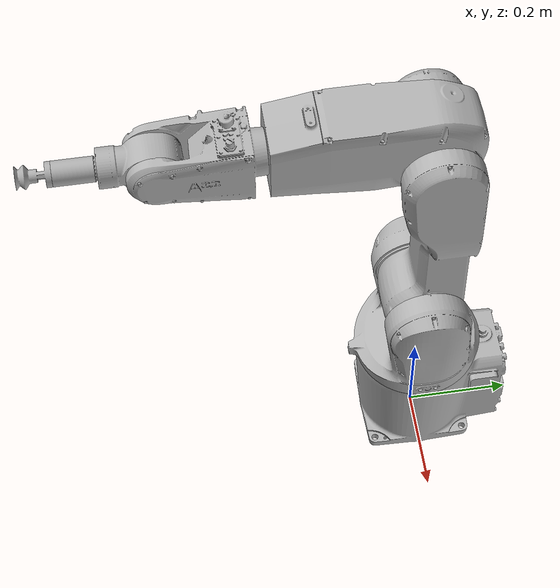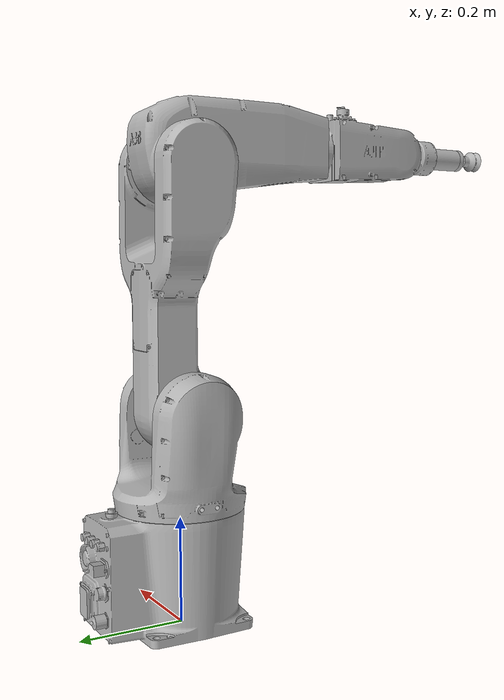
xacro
<?xml version="1.0" ?>
<robot name="irb1200" xmlns:xacro="http://www.ros.org/wiki/xacro">

<xacro:include filename="$(find irb1200)/urdf/materials.xacro" />
<xacro:include filename="$(find irb1200)/urdf/irb1200.trans" />
<xacro:include filename="$(find irb1200)/urdf/irb1200.gazebo" />
<link name="base_link">
  <inertial>
    <origin xyz="0.0004759674741186417 0.02363485068790292 0.11219148932498035" rpy="0 0 0"/>
    <mass value="83.56071102944446"/>
    <inertia ixx="0.781146" iyy="0.579256" izz="0.698148" ixy="-0.004319" iyz="0.00506" ixz="-0.001279"/>
  </inertial>
  <visual>
    <origin xyz="0 0 0" rpy="0 0 0"/>
    <geometry>
      <mesh filename="package://irb1200/meshes/base_link.stl" scale="0.001 0.001 0.001"/>
    </geometry>
    <material name="silver"/>
  </visual>
  <collision>
    <origin xyz="0 0 0" rpy="0 0 0"/>
    <geometry>
      <mesh filename="package://irb1200/meshes/base_link.stl" scale="0.001 0.001 0.001"/>
    </geometry>
  </collision>
</link>

<link name="Link1_rev0_1">
  <inertial>
    <origin xyz="0.0004383806530665506 0.00326493021677348 0.10230298786125677" rpy="0 0 0"/>
    <mass value="47.61495963534385"/>
    <inertia ixx="0.37735" iyy="0.595233" izz="0.433856" ixy="0.000186" iyz="0.004407" ixz="0.000755"/>
  </inertial>
  <visual>
    <origin xyz="0.0 -0.0 -0.219" rpy="0 0 0"/>
    <geometry>
      <mesh filename="package://irb1200/meshes/Link1_rev0_1.stl" scale="0.001 0.001 0.001"/>
    </geometry>
    <material name="silver"/>
  </visual>
  <collision>
    <origin xyz="0.0 -0.0 -0.219" rpy="0 0 0"/>
    <geometry>
      <mesh filename="package://irb1200/meshes/Link1_rev0_1.stl" scale="0.001 0.001 0.001"/>
    </geometry>
  </collision>
</link>

<link name="Link2_rev0_1">
  <inertial>
    <origin xyz="0.05704146777769828 0.012331972875891169 0.21847788526315937" rpy="0 0 0"/>
    <mass value="62.59364394380273"/>
    <inertia ixx="1.921119" iyy="2.095675" izz="0.339093" ixy="-0.000462" iyz="0.008496" ixz="0.002671"/>
  </inertial>
  <visual>
    <origin xyz="0.0615 -0.0 -0.3991" rpy="0 0 0"/>
    <geometry>
      <mesh filename="package://irb1200/meshes/Link2_rev0_1.stl" scale="0.001 0.001 0.001"/>
    </geometry>
    <material name="silver"/>
  </visual>
  <collision>
    <origin xyz="0.0615 -0.0 -0.3991" rpy="0 0 0"/>
    <geometry>
      <mesh filename="package://irb1200/meshes/Link2_rev0_1.stl" scale="0.001 0.001 0.001"/>
    </geometry>
  </collision>
</link>

<link name="Link3_rev0_1">
  <inertial>
    <origin xyz="-0.06379555030759612 -0.09811898038030374 0.03502911684883658" rpy="0 0 0"/>
    <mass value="50.25181750727747"/>
    <inertia ixx="0.614584" iyy="0.159822" izz="0.56594" ixy="-0.000967" iyz="0.040908" ixz="0.000343"/>
  </inertial>
  <visual>
    <origin xyz="-0.0607 -0.0 -0.8471" rpy="0 0 0"/>
    <geometry>
      <mesh filename="package://irb1200/meshes/Link3_rev0_1.stl" scale="0.001 0.001 0.001"/>
    </geometry>
    <material name="silver"/>
  </visual>
  <collision>
    <origin xyz="-0.0607 -0.0 -0.8471" rpy="0 0 0"/>
    <geometry>
      <mesh filename="package://irb1200/meshes/Link3_rev0_1.stl" scale="0.001 0.001 0.001"/>
    </geometry>
  </collision>
</link>

<link name="Link4_rev0_1">
  <inertial>
    <origin xyz="0.001625537251923985 -0.0937540320207727 0.001095972007822188" rpy="0 0 0"/>
    <mass value="14.103815294617599"/>
    <inertia ixx="0.057707" iyy="0.029402" izz="0.061948" ixy="0.001376" iyz="-0.000481" ixz="-1e-05"/>
  </inertial>
  <visual>
    <origin xyz="0.0033 0.2885 -0.888589" rpy="0 0 0"/>
    <geometry>
      <mesh filename="package://irb1200/meshes/Link4_rev0_1.stl" scale="0.001 0.001 0.001"/>
    </geometry>
    <material name="silver"/>
  </visual>
  <collision>
    <origin xyz="0.0033 0.2885 -0.888589" rpy="0 0 0"/>
    <geometry>
      <mesh filename="package://irb1200/meshes/Link4_rev0_1.stl" scale="0.001 0.001 0.001"/>
    </geometry>
  </collision>
</link>

<link name="Link5_rev0_1">
  <inertial>
    <origin xyz="-0.028822154297697893 -0.020848353265404296 -5.43628715483635e-05" rpy="0 0 0"/>
    <mass value="4.542291056700567"/>
    <inertia ixx="0.008926" iyy="0.003477" izz="0.007834" ixy="-0.000177" iyz="1.2e-05" ixz="-4e-06"/>
  </inertial>
  <visual>
    <origin xyz="-0.022199 0.474 -0.888592" rpy="0 0 0"/>
    <geometry>
      <mesh filename="package://irb1200/meshes/Link5_rev0_1.stl" scale="0.001 0.001 0.001"/>
    </geometry>
    <material name="silver"/>
  </visual>
  <collision>
    <origin xyz="-0.022199 0.474 -0.888592" rpy="0 0 0"/>
    <geometry>
      <mesh filename="package://irb1200/meshes/Link5_rev0_1.stl" scale="0.001 0.001 0.001"/>
    </geometry>
  </collision>
</link>

<link name="Link6_rev0_1">
  <inertial>
    <origin xyz="-4.944434111361223e-07 -0.0028457139621871352 -0.00036694072263832034" rpy="0 0 0"/>
    <mass value="0.03668180966446828"/>
    <inertia ixx="5e-06" iyy="1e-05" izz="5e-06" ixy="-0.0" iyz="0.0" ixz="0.0"/>
  </inertial>
  <visual>
    <origin xyz="0.009051 0.5665 -0.888594" rpy="0 0 0"/>
    <geometry>
      <mesh filename="package://irb1200/meshes/Link6_rev0_1.stl" scale="0.001 0.001 0.001"/>
    </geometry>
    <material name="silver"/>
  </visual>
  <collision>
    <origin xyz="0.009051 0.5665 -0.888594" rpy="0 0 0"/>
    <geometry>
      <mesh filename="package://irb1200/meshes/Link6_rev0_1.stl" scale="0.001 0.001 0.001"/>
    </geometry>
  </collision>
</link>

<link name="tubo_Prismatico_v4_1">
  <inertial>
    <origin xyz="-4.944404100211408e-07 -0.030291464452243733 4.067732127799317e-07" rpy="0 0 0"/>
    <mass value="0.28192289619363314"/>
    <inertia ixx="0.000187" iyy="0.000103" izz="0.000187" ixy="0.0" iyz="0.0" ixz="0.0"/>
  </inertial>
  <visual>
    <origin xyz="0.009051 0.572 -0.888594" rpy="0 0 0"/>
    <geometry>
      <mesh filename="package://irb1200/meshes/tubo_Prismatico_v4_1.stl" scale="0.001 0.001 0.001"/>
    </geometry>
    <material name="silver"/>
  </visual>
  <collision>
    <origin xyz="0.009051 0.572 -0.888594" rpy="0 0 0"/>
    <geometry>
      <mesh filename="package://irb1200/meshes/tubo_Prismatico_v4_1.stl" scale="0.001 0.001 0.001"/>
    </geometry>
  </collision>
</link>

<link name="ventosa_prismatico_1">
  <inertial>
    <origin xyz="-4.944385040943355e-07 -0.044914102030246816 7.328922135840799e-07" rpy="0 0 0"/>
    <mass value="0.6744811347638636"/>
    <inertia ixx="0.000594" iyy="0.000116" izz="0.000594" ixy="0.0" iyz="0.0" ixz="-0.0"/>
  </inertial>
  <visual>
    <origin xyz="0.009051 0.577 -0.888594" rpy="0 0 0"/>
    <geometry>
      <mesh filename="package://irb1200/meshes/ventosa_prismatico_1.stl" scale="0.001 0.001 0.001"/>
    </geometry>
    <material name="silver"/>
  </visual>
  <collision>
    <origin xyz="0.009051 0.577 -0.888594" rpy="0 0 0"/>
    <geometry>
      <mesh filename="package://irb1200/meshes/ventosa_prismatico_1.stl" scale="0.001 0.001 0.001"/>
    </geometry>
  </collision>
</link>

<joint name="Revolute 1" type="revolute">
  <origin xyz="0.0 0.0 0.219" rpy="0 0 0"/>
  <parent link="base_link"/>
  <child link="Link1_rev0_1"/>
  <axis xyz="-0.0 0.0 1.0"/>
  <limit upper="1.570796" lower="-1.570796" effort="100" velocity="100"/>
</joint>

<joint name="Revolute 2" type="revolute">
  <origin xyz="-0.0615 0.0 0.1801" rpy="0 0 0"/>
  <parent link="Link1_rev0_1"/>
  <child link="Link2_rev0_1"/>
  <axis xyz="1.0 0.0 0.0"/>
  <limit upper="1.570796" lower="-1.570796" effort="100" velocity="100"/>
</joint>

<joint name="Revolute 3" type="revolute">
  <origin xyz="0.1222 0.0 0.448" rpy="0 0 0"/>
  <parent link="Link2_rev0_1"/>
  <child link="Link3_rev0_1"/>
  <axis xyz="-1.0 -0.0 -0.0"/>
  <limit upper="1.047198" lower="-1.047198" effort="100" velocity="100"/>
</joint>

<joint name="Revolute 4" type="revolute">
  <origin xyz="-0.064 -0.2885 0.041489" rpy="0 0 0"/>
  <parent link="Link3_rev0_1"/>
  <child link="Link4_rev0_1"/>
  <axis xyz="0.0 -1.0 0.0"/>
  <limit upper="1.570796" lower="-1.570796" effort="100" velocity="100"/>
</joint>

<joint name="Revolute 5" type="revolute">
  <origin xyz="0.025499 -0.1855 3e-06" rpy="0 0 0"/>
  <parent link="Link4_rev0_1"/>
  <child link="Link5_rev0_1"/>
  <axis xyz="-1.0 -0.0 -0.0"/>
  <limit upper="1.570796" lower="-1.570796" effort="100" velocity="100"/>
</joint>

<joint name="Revolute 10" type="continuous">
  <origin xyz="-0.03125 -0.0925 2e-06" rpy="0 0 0"/>
  <parent link="Link5_rev0_1"/>
  <child link="Link6_rev0_1"/>
  <axis xyz="0.0 -1.0 1.7e-05"/>
</joint>

<joint name="Rigid 11" type="fixed">
  <origin xyz="0.0 -0.0055 0.0" rpy="0 0 0"/>
  <parent link="Link6_rev0_1"/>
  <child link="tubo_Prismatico_v4_1"/>
</joint>

<joint name="Slider 12" type="prismatic">
  <origin xyz="0.0 -0.005 0.0" rpy="0 0 0"/>
  <parent link="tubo_Prismatico_v4_1"/>
  <child link="ventosa_prismatico_1"/>
  <axis xyz="0.0 -1.0 1.7e-05"/>
  <limit upper="0.062" lower="0.0" effort="100" velocity="100"/>
</joint>

</robot>

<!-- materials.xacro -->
<robot name="irb1200" xmlns:xacro="http://www.ros.org/wiki/xacro" >

<material name="silver">
  <color rgba="0.700 0.700 0.700 1.000"/>
</material>

</robot>

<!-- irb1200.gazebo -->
<robot name="irb1200" xmlns:xacro="http://www.ros.org/wiki/xacro" >

<xacro:property name="body_color" value="Gazebo/Silver" />

<gazebo>
  <plugin name="control" filename="libgazebo_ros_control.so"/>
</gazebo>
<gazebo reference="base_link">
  <material>${body_color}</material>
  <mu1>0.2</mu1>
  <mu2>0.2</mu2>
  <selfCollide>true</selfCollide>
  <gravity>true</gravity>
</gazebo>

<gazebo reference="Link1_rev0_1">
  <material>${body_color}</material>
  <mu1>0.2</mu1>
  <mu2>0.2</mu2>
  <selfCollide>true</selfCollide>
</gazebo>

<gazebo reference="Link2_rev0_1">
  <material>${body_color}</material>
  <mu1>0.2</mu1>
  <mu2>0.2</mu2>
  <selfCollide>true</selfCollide>
</gazebo>

<gazebo reference="Link3_rev0_1">
  <material>${body_color}</material>
  <mu1>0.2</mu1>
  <mu2>0.2</mu2>
  <selfCollide>true</selfCollide>
</gazebo>

<gazebo reference="Link4_rev0_1">
  <material>${body_color}</material>
  <mu1>0.2</mu1>
  <mu2>0.2</mu2>
  <selfCollide>true</selfCollide>
</gazebo>

<gazebo reference="Link5_rev0_1">
  <material>${body_color}</material>
  <mu1>0.2</mu1>
  <mu2>0.2</mu2>
  <selfCollide>true</selfCollide>
</gazebo>

<gazebo reference="Link6_rev0_1">
  <material>${body_color}</material>
  <mu1>0.2</mu1>
  <mu2>0.2</mu2>
  <selfCollide>true</selfCollide>
</gazebo>

<gazebo reference="tubo_Prismatico_v4_1">
  <material>${body_color}</material>
  <mu1>0.2</mu1>
  <mu2>0.2</mu2>
  <selfCollide>true</selfCollide>
</gazebo>

<gazebo reference="ventosa_prismatico_1">
  <material>${body_color}</material>
  <mu1>0.2</mu1>
  <mu2>0.2</mu2>
  <selfCollide>true</selfCollide>
</gazebo>

</robot>
